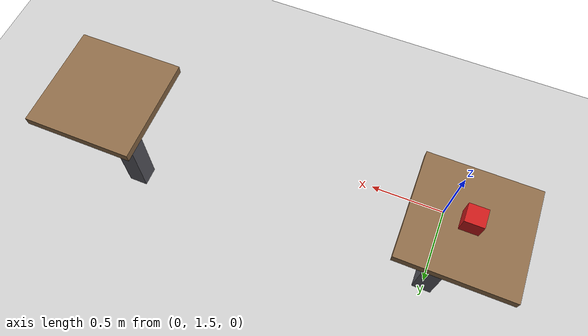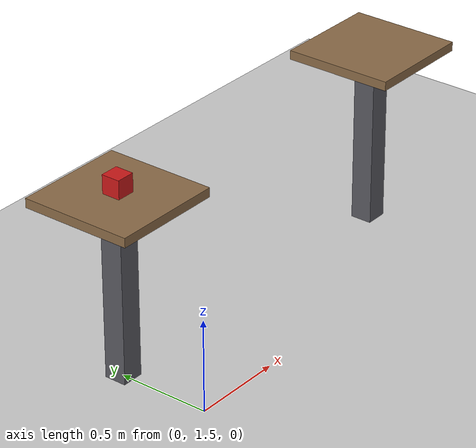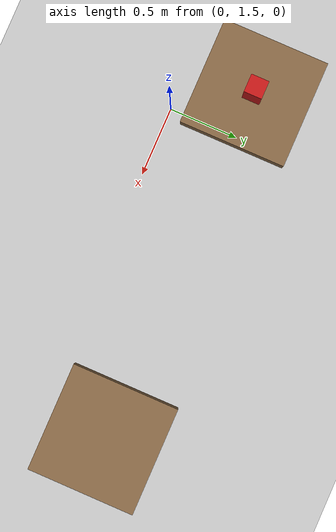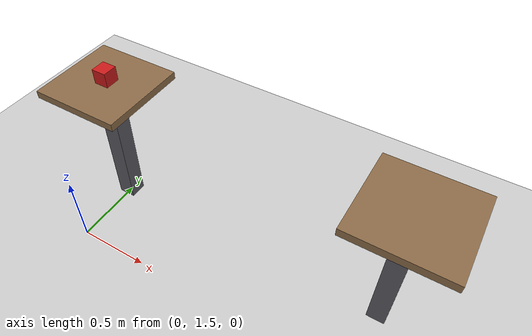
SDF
<?xml version="1.0" ?>
<sdf version="1.9">
  <world name="world_demo">
    <physics name="1ms" type="ignored">
      <max_step_size>0.001</max_step_size>
      <real_time_factor>1.0</real_time_factor>
    </physics>
    <plugin
      filename="gz-sim-physics-system"
      name="gz::sim::systems::Physics">
    </plugin>
    <plugin
      filename="gz-sim-user-commands-system"
      name="gz::sim::systems::UserCommands">
    </plugin>
    <plugin
      filename="gz-sim-scene-broadcaster-system"
      name="gz::sim::systems::SceneBroadcaster">
    </plugin>
    <plugin name="gz::sim::systems::Imu" filename="gz-sim-imu-system"/>
    <plugin name="gz::sim::systems::AirPressure" filename="gz-sim-air-pressure-system"/>
    <plugin name="gz::sim::systems::AirSpeed" filename="gz-sim-air-speed-system"/>
    <plugin name="gz::sim::systems::ApplyLinkWrench" filename="gz-sim-apply-link-wrench-system"/>
    <plugin name="gz::sim::systems::NavSat" filename="gz-sim-navsat-system"/>
    <plugin name="gz::sim::systems::Magnetometer" filename="gz-sim-magnetometer-system"/>
    <plugin name="gz::sim::systems::Sensors" filename="gz-sim-sensors-system">
      <render_engine>ogre2</render_engine>
    </plugin>

    <gravity>0 0 -9.8</gravity>
    <magnetic_field>6e-06 2.3e-05 -4.2e-05</magnetic_field>
    <atmosphere type="adiabatic"/>

    <model name="ground_plane">
      <static>true</static>
      <link name="link">
        <collision name="collision">
          <geometry>
            <plane>
              <normal>0 0 1</normal>
              <size>100 100</size>
            </plane>
          </geometry>
	      <surface>
		<bounce>
		  <restitution_coefficient>0.1</restitution_coefficient>
		</bounce>
		<contact>
		  <ode>
		    <max_vel>100.0</max_vel>
		    <min_depth>0.001</min_depth>
		  </ode>
		</contact>
		<friction>
		  <ode>
		    <mu>100000.0</mu>
		    <mu2>100000.0</mu2>
		  </ode>
		</friction>
	      </surface>
        </collision>
        <visual name="visual">
          <geometry>
            <plane>
              <normal>0 0 1</normal>
              <size>100 100</size>
            </plane>
          </geometry>
          <material>
            <ambient>0.8 0.8 0.8 1</ambient>
            <diffuse>0.8 0.8 0.8 1</diffuse>
            <specular>0.8 0.8 0.8 1</specular>
          </material>
        </visual>
      </link>
    </model>

    <!--light-->
    <light type="directional" name="sun">
      <cast_shadows>true</cast_shadows>
      <pose>0 0 10 0 0 0</pose>
      <diffuse>0.8 0.8 0.8 1</diffuse>
      <specular>0.2 0.2 0.2 1</specular>
      <attenuation>
        <range>1000</range>
        <constant>0.9</constant>
        <linear>0.01</linear>
        <quadratic>0.001</quadratic>
      </attenuation>
      <direction>-0.5 0.1 -0.9</direction>
    </light>
    <spherical_coordinates>
      <surface_model>EARTH_WGS84</surface_model>
      <world_frame_orientation>ENU</world_frame_orientation>
      <latitude_deg>47.397971057728974</latitude_deg>
      <longitude_deg> 8.546163739800146</longitude_deg>
      <elevation>0</elevation>
    </spherical_coordinates>

    <model name="pickup_table">
      <static>true</static>
      <pose>0 2.0 0 0 0 0</pose>
      <link name="link">
        <collision name="top_collision">
          <pose>0 0 0.975 0 0 0</pose>
          <geometry>
            <box>
              <size>0.6 0.6 0.05</size>
            </box>
          </geometry>
          <surface>
            <friction>
              <ode>
                <mu>0.8</mu>
                <mu2>0.8</mu2>
              </ode>
            </friction>
          </surface>
        </collision>
        <visual name="top_visual">
          <pose>0 0 0.975 0 0 0</pose>
          <geometry>
            <box>
              <size>0.6 0.6 0.05</size>
            </box>
          </geometry>
          <material>
            <ambient>0.55 0.42 0.28 1</ambient>
            <diffuse>0.55 0.42 0.28 1</diffuse>
          </material>
        </visual>
        <collision name="column_collision">
          <pose>0 0 0.475 0 0 0</pose>
          <geometry>
            <box>
              <size>0.12 0.12 0.95</size>
            </box>
          </geometry>
        </collision>
        <visual name="column_visual">
          <pose>0 0 0.475 0 0 0</pose>
          <geometry>
            <box>
              <size>0.12 0.12 0.95</size>
            </box>
          </geometry>
          <material>
            <ambient>0.35 0.35 0.38 1</ambient>
            <diffuse>0.35 0.35 0.38 1</diffuse>
          </material>
        </visual>
      </link>
    </model>

    <model name="grasp_object">
      <static>false</static>
      <pose>0 2.0 1.05 0 0 0</pose>
      <link name="link">
        <inertial>
          <mass>0.15</mass>
          <inertia>
            <ixx>2.5e-4</ixx>
            <iyy>2.5e-4</iyy>
            <izz>2.5e-4</izz>
            <ixy>0</ixy>
            <ixz>0</ixz>
            <iyz>0</iyz>
          </inertia>
        </inertial>
        <collision name="collision">
          <geometry>
            <box>
              <size>0.1 0.1 0.1</size>
            </box>
          </geometry>
          <surface>
            <friction>
              <ode>
                <!-- Placeholder for silicone dome on printed plastic-->
                <mu>1.0</mu>
                <mu2>1.0</mu2>
              </ode>
            </friction>
          </surface>
        </collision>
        <visual name="visual">
          <geometry>
            <box>
              <size>0.1 0.1 0.1</size>
            </box>
          </geometry>
          <material>
            <ambient>0.8 0.1 0.1 1</ambient>
            <diffuse>0.8 0.1 0.1 1</diffuse>
          </material>
        </visual>
      </link>
    </model>

    <model name="dropoff_table">
      <static>true</static>
      <pose>2.0 2.0 0 0 0 0</pose>
      <link name="link">
        <collision name="top_collision">
          <pose>0 0 0.975 0 0 0</pose>
          <geometry>
            <box>
              <size>0.6 0.6 0.05</size>
            </box>
          </geometry>
          <surface>
            <friction>
              <ode>
                <mu>0.8</mu>
                <mu2>0.8</mu2>
              </ode>
            </friction>
          </surface>
        </collision>
        <visual name="top_visual">
          <pose>0 0 0.975 0 0 0</pose>
          <geometry>
            <box>
              <size>0.6 0.6 0.05</size>
            </box>
          </geometry>
          <material>
            <ambient>0.55 0.42 0.28 1</ambient>
            <diffuse>0.55 0.42 0.28 1</diffuse>
          </material>
        </visual>
        <collision name="column_collision">
          <pose>0 0 0.475 0 0 0</pose>
          <geometry>
            <box>
              <size>0.12 0.12 0.95</size>
            </box>
          </geometry>
        </collision>
        <visual name="column_visual">
          <pose>0 0 0.475 0 0 0</pose>
          <geometry>
            <box>
              <size>0.12 0.12 0.95</size>
            </box>
          </geometry>
          <material>
            <ambient>0.35 0.35 0.38 1</ambient>
            <diffuse>0.35 0.35 0.38 1</diffuse>
          </material>
        </visual>
      </link>
    </model>

  </world>
</sdf>
